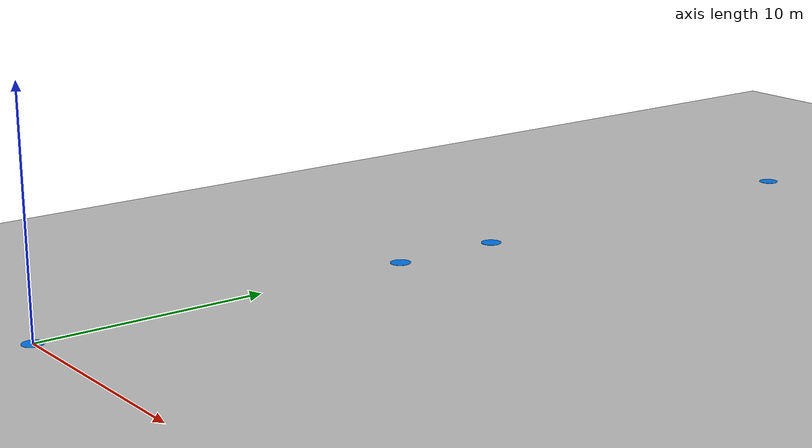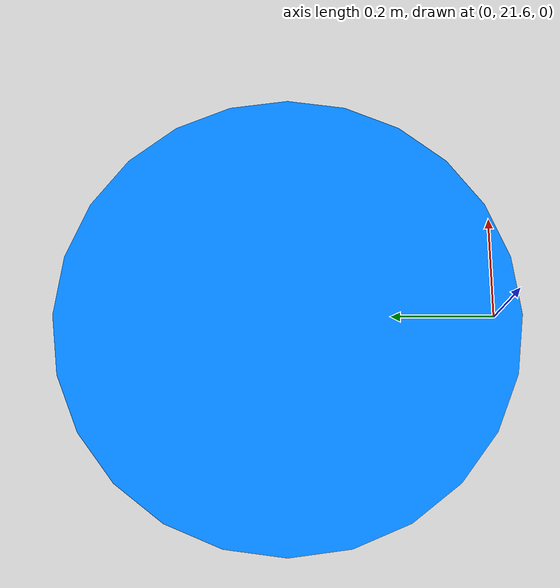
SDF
<sdf version="1.7">
 <world name="igvc2027_no_mans_land">
  <spherical_coordinates>
   <surface_model>EARTH_WGS84</surface_model>
   <world_frame_orientation>ENU</world_frame_orientation>
   <latitude_deg>42.66791</latitude_deg>
   <longitude_deg>-83.21958</longitude_deg>
   <elevation>286</elevation>
   <heading_deg>0</heading_deg>
  </spherical_coordinates>
  <scene><ambient>1 1 1</ambient><grid>false</grid></scene>
  <physics name="1ms" type="ODE">
   <max_step_size>0.001</max_step_size>
   <real_time_factor>1.0</real_time_factor>
  </physics>
  <plugin filename="gz-sim-physics-system" name="gz::sim::systems::Physics"/>
  <plugin filename="gz-sim-user-commands-system" name="gz::sim::systems::UserCommands"/>
  <plugin filename="gz-sim-scene-broadcaster-system" name="gz::sim::systems::SceneBroadcaster"/>
  <plugin filename="gz-sim-contact-system" name="gz::sim::systems::Contact"/>
  <plugin filename="gz-sim-imu-system" name="gz::sim::systems::Imu"/>
  <plugin filename="ignition-gazebo-navsat-system" name="ignition::gazebo::systems::NavSat"/>
  <include><uri>model://ground_plane</uri><name>Ground Plane</name><pose>0 20 0 0 0 0</pose></include>
  <light name="sun" type="directional">
   <pose>0 20 10 0 0 0</pose>
   <diffuse>0.8 0.8 0.8 1</diffuse>
   <specular>0.2 0.2 0.2 1</specular>
   <attenuation>
    <range>1000</range>
    <constant>0.9</constant>
    <linear>0.01</linear>
    <quadratic>0.001</quadratic>
   </attenuation>
   <direction>-0.5 0.1 -0.9</direction>
  </light>
  <model name="waypoint_1">
   <static>true</static>
   <pose>0 0 0.015 0 0 0</pose>
   <link name="marker">
    <visual name="disk">
     <cast_shadows>false</cast_shadows>
     <geometry><cylinder><radius>0.45</radius><length>0.01</length></cylinder></geometry>
     <material>
      <ambient>0.0 0.5 1.0 1</ambient>
      <diffuse>0.0 0.5 1.0 1</diffuse>
      <emissive>0.0 0.2 0.5 1</emissive>
     </material>
    </visual>
   </link>
  </model>
  <model name="waypoint_2">
   <static>true</static>
   <pose>0 17 0.015 0 0 0</pose>
   <link name="marker">
    <visual name="disk">
     <cast_shadows>false</cast_shadows>
     <geometry><cylinder><radius>0.45</radius><length>0.01</length></cylinder></geometry>
     <material>
      <ambient>0.0 0.5 1.0 1</ambient>
      <diffuse>0.0 0.5 1.0 1</diffuse>
      <emissive>0.0 0.2 0.5 1</emissive>
     </material>
    </visual>
   </link>
  </model>
  <model name="waypoint_3">
   <static>true</static>
   <pose>0 22 0.015 0 0 0</pose>
   <link name="marker">
    <visual name="disk">
     <cast_shadows>false</cast_shadows>
     <geometry><cylinder><radius>0.45</radius><length>0.01</length></cylinder></geometry>
     <material>
      <ambient>0.0 0.5 1.0 1</ambient>
      <diffuse>0.0 0.5 1.0 1</diffuse>
      <emissive>0.0 0.2 0.5 1</emissive>
     </material>
    </visual>
   </link>
  </model>
  <model name="waypoint_4">
   <static>true</static>
   <pose>0 40 0.015 0 0 0</pose>
   <link name="marker">
    <visual name="disk">
     <cast_shadows>false</cast_shadows>
     <geometry><cylinder><radius>0.45</radius><length>0.01</length></cylinder></geometry>
     <material>
      <ambient>0.0 0.5 1.0 1</ambient>
      <diffuse>0.0 0.5 1.0 1</diffuse>
      <emissive>0.0 0.2 0.5 1</emissive>
     </material>
    </visual>
   </link>
  </model>
 </world>
</sdf>
